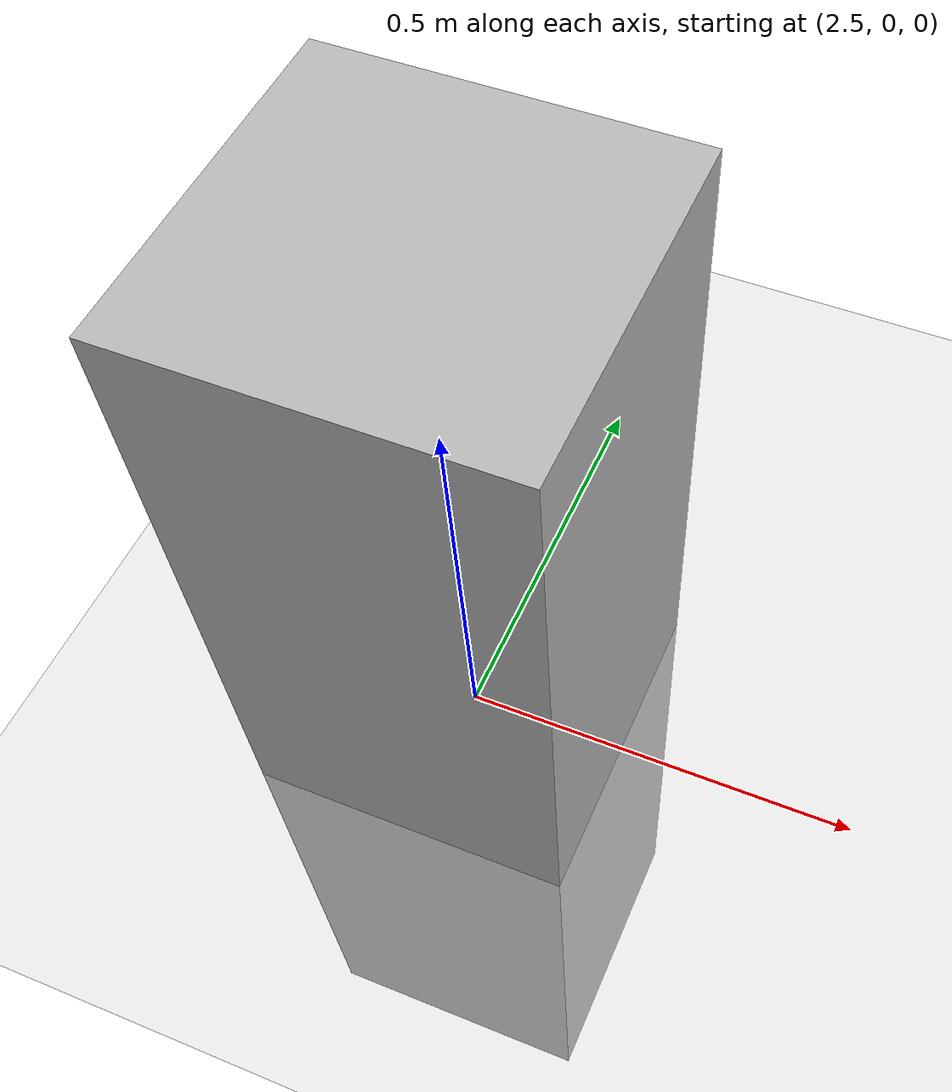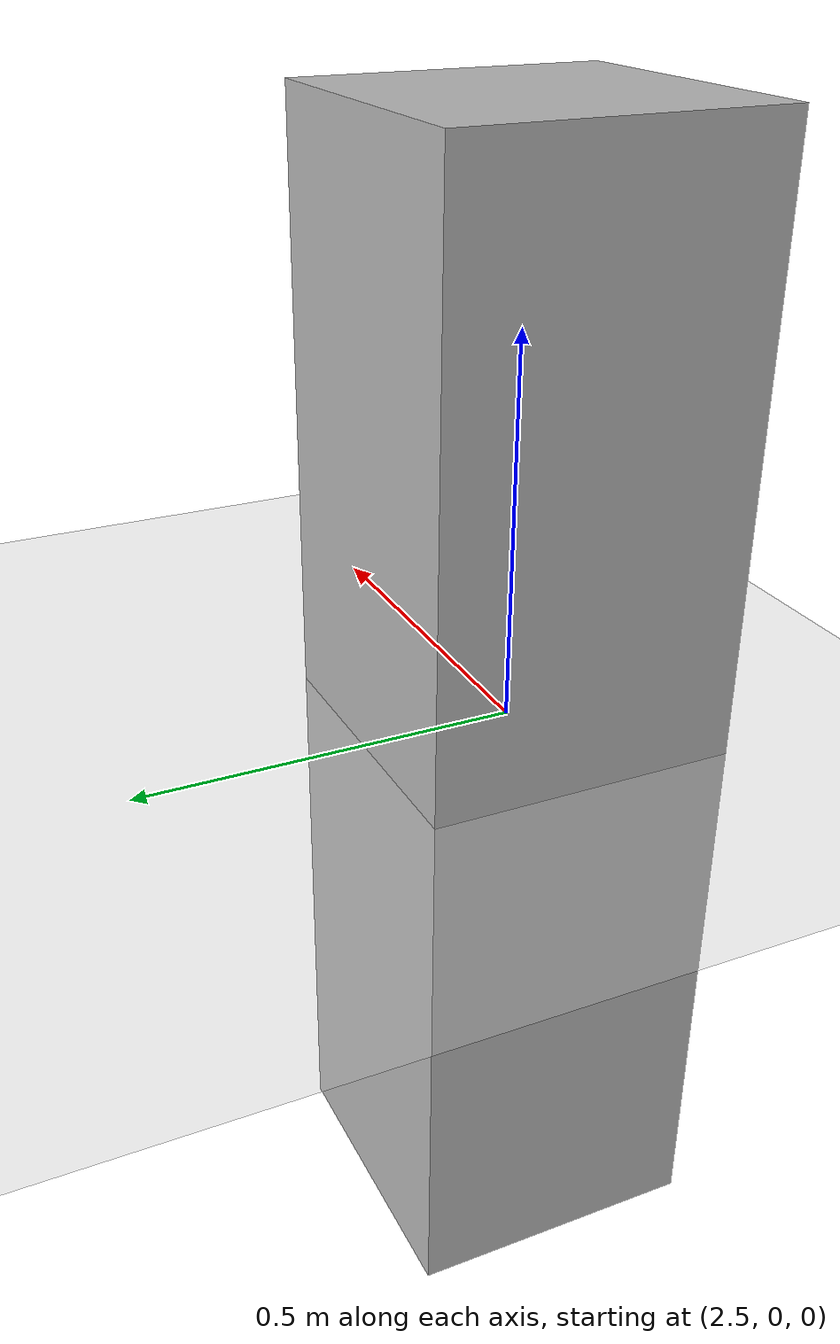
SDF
<?xml version="1.0"?>
<sdf version="1.4">
  <world name="animated_box_world">

    <!-- Ground Plane -->
    <include>
      <uri>model://ground_plane</uri>
    </include>

    <include>
      <uri>model://sun</uri>
    </include>

    <model name="box">
      <pose>2.5 0 0 0 0 0</pose>
      <link name="link">
        <collision name="collision">
          <geometry>
            <box>
              <size>0.4 0.4 1.5</size>
            </box>
          </geometry>
        </collision>

        <visual name="visual">
          <geometry>
            <box>
              <size>0.4 0.4 1.5</size>
            </box>
          </geometry>
        </visual>
      </link>

      <plugin name="push_animate" filename="/home/pzc/rob_cat_ws/src/animal_box/build/libanimated_box.so"/>
    </model>
  </world>
</sdf>
